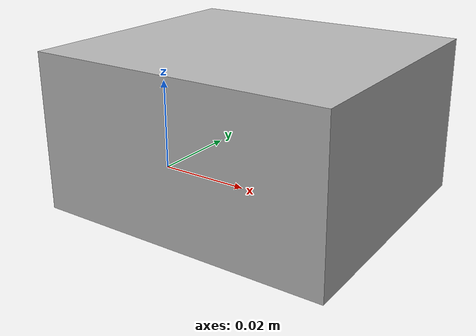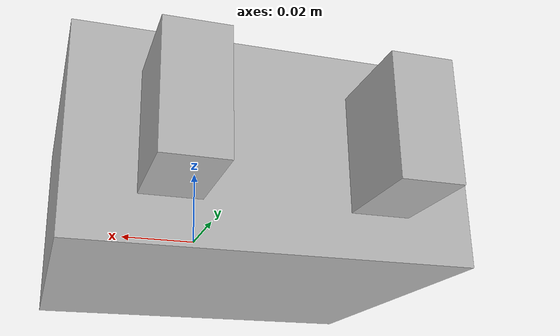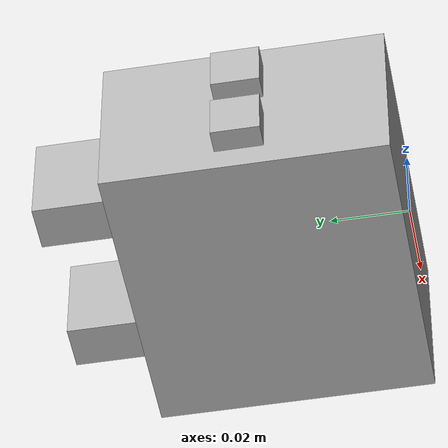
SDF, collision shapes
<?xml version="1.0" ?>
<sdf version="1.5">
  <model name="schunk_mpg_80">
    <link name="base">
      <self_collide>false</self_collide>
      <inertial>
        <pose>0 0.035 0 0 0 0</pose>
        <inertia>
          <ixx>0.00053312</ixx>
          <ixy>0</ixy>
          <ixz>0</ixz>
          <iyy>0.00065312</iyy>
          <iyz>0</iyz>
          <izz>0.000904</izz>
        </inertia>
        <mass>0.96</mass>
      </inertial>
      <visual name="base_geom_visual">
        <pose>0 0 0 0 0 0</pose>
        <geometry>
          <mesh>
            <uri>model://reveal_schunk_description/meshes/mpg_80/visual/SCHUNK_MPG-80_BASE.dae</uri>
          </mesh>
        </geometry>
      </visual>
      <collision name="base_geom_collision">
        <pose>0 0.035 0 0 0 0</pose>
        <geometry>
          <box>
            <size>0.08 0.07 0.042</size>
          </box>
        </geometry>
      </collision>
      <collision name="base_tab1_geom_collision">
        <pose>-0.043 0.036 0.009 0 0 0</pose>
        <geometry>
          <box>
            <size>0.006 0.012 0.012</size>
          </box>
        </geometry>
      </collision>
      <collision name="base_tab2_geom_collision">
        <pose>-0.043 0.036 -0.009 0 0 0</pose>
        <geometry>
          <box>
            <size>0.006 0.012 0.012</size>
          </box>
        </geometry>
      </collision>
    </link>
    <link name="l_finger">
      <self_collide>true</self_collide>
      <inertial>
        <pose>-0.0205 0.0798 0 0 0 0</pose>
        <inertia>
          <ixx>0.0000095236</ixx>
          <ixy>0</ixy>
          <ixz>0</ixz>
          <iyy>0.0000072</iyy>
          <iyz>0</iyz>
          <izz>0.0000052036</izz>
        </inertia>
        <mass>0.12</mass>
      </inertial>
      <visual name="l_finger_geom_visual">
        <pose>0 0 0 0 0 0</pose>
        <geometry>
          <mesh>
            <uri>model://reveal_schunk_description/meshes/mpg_80/visual/SCHUNK_MPG-80_LEFT_FINGER.dae</uri>
          </mesh>
        </geometry>
      </visual>
      <collision name="l_finger_tip_geom_collision">
        <pose>-0.0205 0.0798 0 0 0 0</pose>
        <geometry>
          <box>
            <size>0.012 0.0194 0.024</size>
          </box>
        </geometry>
        <surface>
          <friction>
            <ode>
              <mu>100</mu>
              <mu2>100</mu2>
              <fdir1>0 0 0</fdir1>
              <slip1>0.0</slip1>
              <slip2>0.0</slip2>
            </ode>
            <bullet>
              <friction>100</friction>
              <friction2>100</friction2>
              <fdir1>0 0 0</fdir1>
              <rolling_friction>100</rolling_friction>
            </bullet>
          </friction>
          <contact>
            <ode>
              <soft_cfm>0</soft_cfm>
              <soft_erp>0.2</soft_erp>
              <kp>1e12</kp>
              <kd>1e8</kd>
              <max_vel>0.01</max_vel>
              <min_depth>0.002</min_depth>
            </ode>
            <bullet>
              <soft_cfm>0</soft_cfm>
              <soft_erp>0.2</soft_erp>
              <kp>1e12</kp>
              <kd>1.0</kd>
              <split_impulse>1</split_impulse>
              <split_impulse_penetration_threshold>-0.01</split_impulse_penetration_threshold>
            </bullet>
          </contact>
        </surface>
      </collision>
    </link>
    <link name="r_finger">
      <self_collide>true</self_collide>
      <inertial>
        <pose>0.0205 0.0798 0 0 0 0</pose>
        <inertia>
          <ixx>0.0000095236</ixx>
          <ixy>0</ixy>
          <ixz>0</ixz>
          <iyy>0.0000072</iyy>
          <iyz>0</iyz>
          <izz>0.0000052036</izz>
        </inertia>
        <mass>0.12</mass>
      </inertial>
      <visual name="r_finger_geom_visual">
        <pose>0 0 0 0 0 0</pose>
        <geometry>
          <mesh>
            <uri>model://reveal_schunk_description/meshes/mpg_80/visual/SCHUNK_MPG-80_RIGHT_FINGER.dae</uri>
          </mesh>
        </geometry>
      </visual>
      <collision name="r_finger_tip_geom_collision">
        <pose>0.0205 0.0798 0 0 0 0</pose>
        <geometry>
          <box>
            <size>0.012 0.0194 0.024</size>
          </box>
        </geometry>
        <surface>
          <friction>
            <ode>
              <mu>100</mu>
              <mu2>100</mu2>
              <fdir1>0 0 0</fdir1>
              <slip1>0.0</slip1>
              <slip2>0.0</slip2>
            </ode>
            <bullet>
              <friction>100</friction>
              <friction2>100</friction2>
              <fdir1>0 0 0</fdir1>
              <rolling_friction>100</rolling_friction>
            </bullet>
          </friction>
          <contact>
            <ode>
              <soft_cfm>0</soft_cfm>
              <soft_erp>0.2</soft_erp>
              <kp>1e12</kp>
              <kd>1e8</kd>
              <max_vel>0.01</max_vel>
              <min_depth>0.002</min_depth>
            </ode>
            <bullet>
              <soft_cfm>0</soft_cfm>
              <soft_erp>0.2</soft_erp>
              <kp>1e12</kp>
              <kd>1.0</kd>
              <split_impulse>1</split_impulse>
              <split_impulse_penetration_threshold>-0.01</split_impulse_penetration_threshold>
            </bullet>
          </contact>
        </surface>
      </collision>
    </link>

    <joint name="l_finger_actuator" type="prismatic">
      <parent>base</parent>
      <child>l_finger</child>
      <axis>
        <dynamics>
          <damping>0.0</damping>
          <friction>0.0</friction>
        </dynamics>
        <xyz>1 0 0</xyz>
        <limit>
          <lower>0</lower>
          <upper>0.014</upper>
        </limit>
      </axis>
    </joint>

    <joint name="r_finger_actuator" type="prismatic">
      <parent>base</parent>
      <child>r_finger</child>
      <axis>
        <dynamics>
          <damping>0.0</damping>
          <friction>0.0</friction>
        </dynamics>
        <xyz>1 0 0</xyz>
        <limit>
          <lower>-0.014</lower>
          <upper>0</upper>
        </limit>
      </axis>
    </joint>
  </model>
</sdf>
